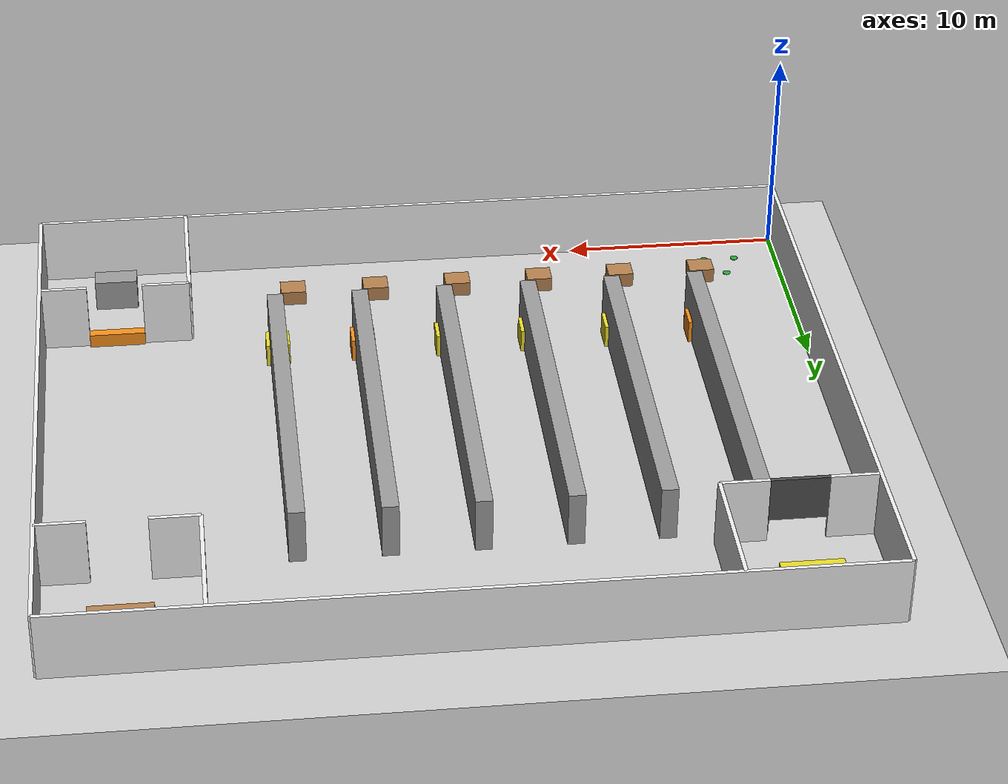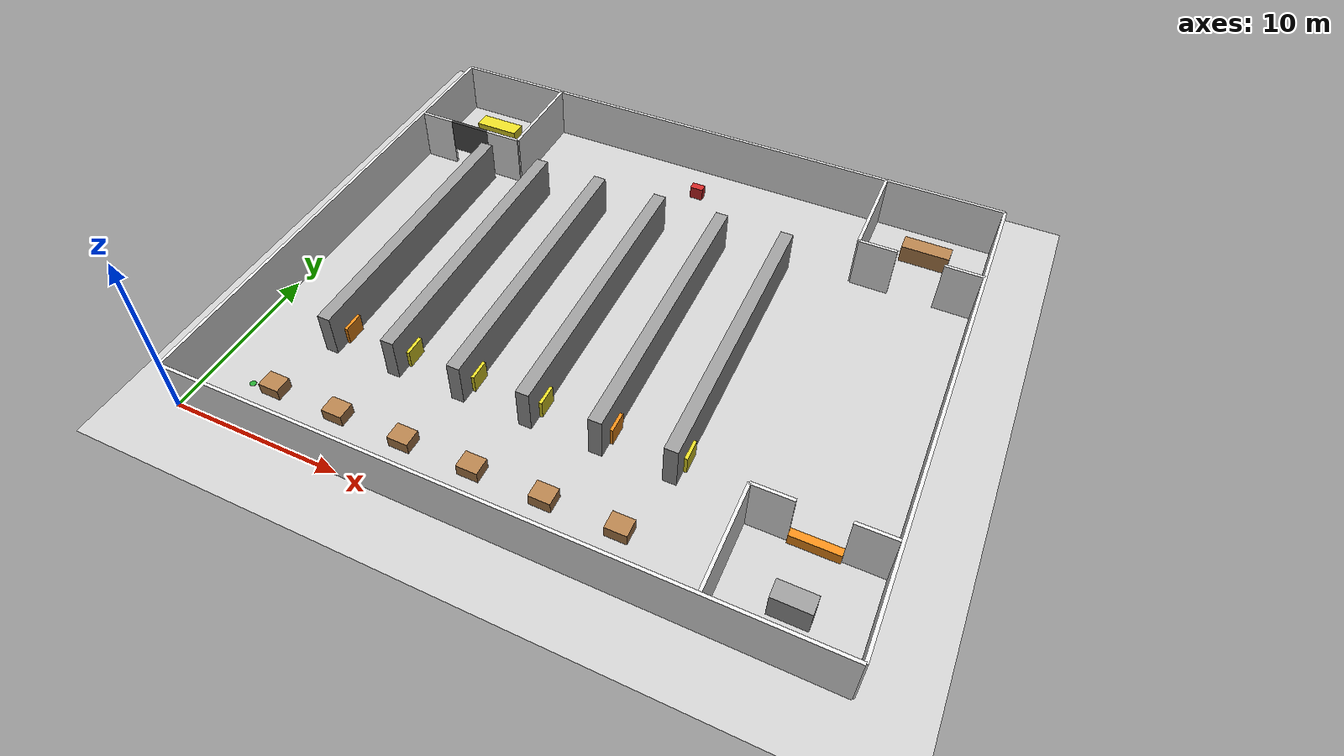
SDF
<?xml version='1.0' encoding='utf-8'?>
<sdf version="1.6">
  <world name="default">
    <physics name="default_physics" default="0" type="ode">
      <max_step_size>0.004</max_step_size>
      <real_time_update_rate>250</real_time_update_rate>
      <real_time_factor>1.0</real_time_factor>
    </physics>
    <scene>
      <ambient>0.65 0.65 0.65 1</ambient>
      <background>0.85 0.88 0.92 1</background>
    </scene>
    <include>
      <uri>model://sun</uri>
    </include>
    <include>
      <uri>model://ground_plane</uri>
    </include>
    <model name="outer_south_0">
      <static>true</static>
      <pose>18.000000 0.000000 1.600000 0.000000 0.000000 0.000000</pose>
      <link name="link">
        <collision name="collision">
          <geometry>
            <box>
              <size>36.000000 0.180000 3.200000</size>
            </box>
          </geometry>
        </collision>
        <visual name="visual">
          <geometry>
            <box>
              <size>36.000000 0.180000 3.200000</size>
            </box>
          </geometry>
          <material>
            <script>
              <uri>file://media/materials/scripts/gazebo.material</uri>
              <name>Gazebo/White</name>
            </script>
          </material>
        </visual>
      </link>
    </model>
    <model name="outer_north_0">
      <static>true</static>
      <pose>18.000000 30.000000 1.600000 0.000000 0.000000 0.000000</pose>
      <link name="link">
        <collision name="collision">
          <geometry>
            <box>
              <size>36.000000 0.180000 3.200000</size>
            </box>
          </geometry>
        </collision>
        <visual name="visual">
          <geometry>
            <box>
              <size>36.000000 0.180000 3.200000</size>
            </box>
          </geometry>
          <material>
            <script>
              <uri>file://media/materials/scripts/gazebo.material</uri>
              <name>Gazebo/White</name>
            </script>
          </material>
        </visual>
      </link>
    </model>
    <model name="outer_west_0">
      <static>true</static>
      <pose>0.000000 15.000000 1.600000 0.000000 0.000000 0.000000</pose>
      <link name="link">
        <collision name="collision">
          <geometry>
            <box>
              <size>0.180000 30.000000 3.200000</size>
            </box>
          </geometry>
        </collision>
        <visual name="visual">
          <geometry>
            <box>
              <size>0.180000 30.000000 3.200000</size>
            </box>
          </geometry>
          <material>
            <script>
              <uri>file://media/materials/scripts/gazebo.material</uri>
              <name>Gazebo/White</name>
            </script>
          </material>
        </visual>
      </link>
    </model>
    <model name="outer_east_0">
      <static>true</static>
      <pose>36.000000 15.000000 1.600000 0.000000 0.000000 0.000000</pose>
      <link name="link">
        <collision name="collision">
          <geometry>
            <box>
              <size>0.180000 30.000000 3.200000</size>
            </box>
          </geometry>
        </collision>
        <visual name="visual">
          <geometry>
            <box>
              <size>0.180000 30.000000 3.200000</size>
            </box>
          </geometry>
          <material>
            <script>
              <uri>file://media/materials/scripts/gazebo.material</uri>
              <name>Gazebo/White</name>
            </script>
          </material>
        </visual>
      </link>
    </model>
    <model name="rack_0">
      <static>true</static>
      <pose>5.000000 15.000000 1.300000 0.000000 0.000000 0.000000</pose>
      <link name="link">
        <collision name="collision">
          <geometry>
            <box>
              <size>0.750000 17.000000 2.600000</size>
            </box>
          </geometry>
        </collision>
        <visual name="visual">
          <geometry>
            <box>
              <size>0.750000 17.000000 2.600000</size>
            </box>
          </geometry>
          <material>
            <script>
              <uri>file://media/materials/scripts/gazebo.material</uri>
              <name>Gazebo/Grey</name>
            </script>
          </material>
        </visual>
      </link>
    </model>
    <model name="cargo_0">
      <static>true</static>
      <pose>5.000000 8.000000 0.550000 0.000000 0.000000 0.000000</pose>
      <link name="link">
        <collision name="collision">
          <geometry>
            <box>
              <size>1.100000 1.200000 1.100000</size>
            </box>
          </geometry>
        </collision>
        <visual name="visual">
          <geometry>
            <box>
              <size>1.100000 1.200000 1.100000</size>
            </box>
          </geometry>
          <material>
            <script>
              <uri>file://media/materials/scripts/gazebo.material</uri>
              <name>Gazebo/Orange</name>
            </script>
          </material>
        </visual>
      </link>
    </model>
    <model name="rack_1">
      <static>true</static>
      <pose>9.000000 15.000000 1.300000 0.000000 0.000000 0.000000</pose>
      <link name="link">
        <collision name="collision">
          <geometry>
            <box>
              <size>0.750000 17.000000 2.600000</size>
            </box>
          </geometry>
        </collision>
        <visual name="visual">
          <geometry>
            <box>
              <size>0.750000 17.000000 2.600000</size>
            </box>
          </geometry>
          <material>
            <script>
              <uri>file://media/materials/scripts/gazebo.material</uri>
              <name>Gazebo/Grey</name>
            </script>
          </material>
        </visual>
      </link>
    </model>
    <model name="cargo_1">
      <static>true</static>
      <pose>9.000000 8.000000 0.550000 0.000000 0.000000 0.000000</pose>
      <link name="link">
        <collision name="collision">
          <geometry>
            <box>
              <size>1.100000 1.200000 1.100000</size>
            </box>
          </geometry>
        </collision>
        <visual name="visual">
          <geometry>
            <box>
              <size>1.100000 1.200000 1.100000</size>
            </box>
          </geometry>
          <material>
            <script>
              <uri>file://media/materials/scripts/gazebo.material</uri>
              <name>Gazebo/Yellow</name>
            </script>
          </material>
        </visual>
      </link>
    </model>
    <model name="rack_2">
      <static>true</static>
      <pose>13.000000 15.000000 1.300000 0.000000 0.000000 0.000000</pose>
      <link name="link">
        <collision name="collision">
          <geometry>
            <box>
              <size>0.750000 17.000000 2.600000</size>
            </box>
          </geometry>
        </collision>
        <visual name="visual">
          <geometry>
            <box>
              <size>0.750000 17.000000 2.600000</size>
            </box>
          </geometry>
          <material>
            <script>
              <uri>file://media/materials/scripts/gazebo.material</uri>
              <name>Gazebo/Grey</name>
            </script>
          </material>
        </visual>
      </link>
    </model>
    <model name="cargo_2">
      <static>true</static>
      <pose>13.000000 8.000000 0.550000 0.000000 0.000000 0.000000</pose>
      <link name="link">
        <collision name="collision">
          <geometry>
            <box>
              <size>1.100000 1.200000 1.100000</size>
            </box>
          </geometry>
        </collision>
        <visual name="visual">
          <geometry>
            <box>
              <size>1.100000 1.200000 1.100000</size>
            </box>
          </geometry>
          <material>
            <script>
              <uri>file://media/materials/scripts/gazebo.material</uri>
              <name>Gazebo/Yellow</name>
            </script>
          </material>
        </visual>
      </link>
    </model>
    <model name="rack_3">
      <static>true</static>
      <pose>17.000000 15.000000 1.300000 0.000000 0.000000 0.000000</pose>
      <link name="link">
        <collision name="collision">
          <geometry>
            <box>
              <size>0.750000 17.000000 2.600000</size>
            </box>
          </geometry>
        </collision>
        <visual name="visual">
          <geometry>
            <box>
              <size>0.750000 17.000000 2.600000</size>
            </box>
          </geometry>
          <material>
            <script>
              <uri>file://media/materials/scripts/gazebo.material</uri>
              <name>Gazebo/Grey</name>
            </script>
          </material>
        </visual>
      </link>
    </model>
    <model name="cargo_3">
      <static>true</static>
      <pose>17.000000 8.000000 0.550000 0.000000 0.000000 0.000000</pose>
      <link name="link">
        <collision name="collision">
          <geometry>
            <box>
              <size>1.100000 1.200000 1.100000</size>
            </box>
          </geometry>
        </collision>
        <visual name="visual">
          <geometry>
            <box>
              <size>1.100000 1.200000 1.100000</size>
            </box>
          </geometry>
          <material>
            <script>
              <uri>file://media/materials/scripts/gazebo.material</uri>
              <name>Gazebo/Yellow</name>
            </script>
          </material>
        </visual>
      </link>
    </model>
    <model name="rack_4">
      <static>true</static>
      <pose>21.000000 15.000000 1.300000 0.000000 0.000000 0.000000</pose>
      <link name="link">
        <collision name="collision">
          <geometry>
            <box>
              <size>0.750000 17.000000 2.600000</size>
            </box>
          </geometry>
        </collision>
        <visual name="visual">
          <geometry>
            <box>
              <size>0.750000 17.000000 2.600000</size>
            </box>
          </geometry>
          <material>
            <script>
              <uri>file://media/materials/scripts/gazebo.material</uri>
              <name>Gazebo/Grey</name>
            </script>
          </material>
        </visual>
      </link>
    </model>
    <model name="cargo_4">
      <static>true</static>
      <pose>21.000000 8.000000 0.550000 0.000000 0.000000 0.000000</pose>
      <link name="link">
        <collision name="collision">
          <geometry>
            <box>
              <size>1.100000 1.200000 1.100000</size>
            </box>
          </geometry>
        </collision>
        <visual name="visual">
          <geometry>
            <box>
              <size>1.100000 1.200000 1.100000</size>
            </box>
          </geometry>
          <material>
            <script>
              <uri>file://media/materials/scripts/gazebo.material</uri>
              <name>Gazebo/Orange</name>
            </script>
          </material>
        </visual>
      </link>
    </model>
    <model name="rack_5">
      <static>true</static>
      <pose>25.000000 15.000000 1.300000 0.000000 0.000000 0.000000</pose>
      <link name="link">
        <collision name="collision">
          <geometry>
            <box>
              <size>0.750000 17.000000 2.600000</size>
            </box>
          </geometry>
        </collision>
        <visual name="visual">
          <geometry>
            <box>
              <size>0.750000 17.000000 2.600000</size>
            </box>
          </geometry>
          <material>
            <script>
              <uri>file://media/materials/scripts/gazebo.material</uri>
              <name>Gazebo/Grey</name>
            </script>
          </material>
        </visual>
      </link>
    </model>
    <model name="cargo_5">
      <static>true</static>
      <pose>25.000000 8.000000 0.550000 0.000000 0.000000 0.000000</pose>
      <link name="link">
        <collision name="collision">
          <geometry>
            <box>
              <size>1.100000 1.200000 1.100000</size>
            </box>
          </geometry>
        </collision>
        <visual name="visual">
          <geometry>
            <box>
              <size>1.100000 1.200000 1.100000</size>
            </box>
          </geometry>
          <material>
            <script>
              <uri>file://media/materials/scripts/gazebo.material</uri>
              <name>Gazebo/Yellow</name>
            </script>
          </material>
        </visual>
      </link>
    </model>
    <model name="dispatch_s_0">
      <static>true</static>
      <pose>30.100000 24.000000 1.600000 0.000000 0.000000 0.000000</pose>
      <link name="link">
        <collision name="collision">
          <geometry>
            <box>
              <size>2.200000 0.180000 3.200000</size>
            </box>
          </geometry>
        </collision>
        <visual name="visual">
          <geometry>
            <box>
              <size>2.200000 0.180000 3.200000</size>
            </box>
          </geometry>
          <material>
            <script>
              <uri>file://media/materials/scripts/gazebo.material</uri>
              <name>Gazebo/White</name>
            </script>
          </material>
        </visual>
      </link>
    </model>
    <model name="dispatch_s_1">
      <static>true</static>
      <pose>34.900000 24.000000 1.600000 0.000000 0.000000 0.000000</pose>
      <link name="link">
        <collision name="collision">
          <geometry>
            <box>
              <size>2.200000 0.180000 3.200000</size>
            </box>
          </geometry>
        </collision>
        <visual name="visual">
          <geometry>
            <box>
              <size>2.200000 0.180000 3.200000</size>
            </box>
          </geometry>
          <material>
            <script>
              <uri>file://media/materials/scripts/gazebo.material</uri>
              <name>Gazebo/White</name>
            </script>
          </material>
        </visual>
      </link>
    </model>
    <model name="dispatch_w_0">
      <static>true</static>
      <pose>29.000000 27.000000 1.600000 0.000000 0.000000 0.000000</pose>
      <link name="link">
        <collision name="collision">
          <geometry>
            <box>
              <size>0.180000 6.000000 3.200000</size>
            </box>
          </geometry>
        </collision>
        <visual name="visual">
          <geometry>
            <box>
              <size>0.180000 6.000000 3.200000</size>
            </box>
          </geometry>
          <material>
            <script>
              <uri>file://media/materials/scripts/gazebo.material</uri>
              <name>Gazebo/White</name>
            </script>
          </material>
        </visual>
      </link>
    </model>
    <model name="maintenance_s_0">
      <static>true</static>
      <pose>1.100000 24.000000 1.600000 0.000000 0.000000 0.000000</pose>
      <link name="link">
        <collision name="collision">
          <geometry>
            <box>
              <size>2.200000 0.180000 3.200000</size>
            </box>
          </geometry>
        </collision>
        <visual name="visual">
          <geometry>
            <box>
              <size>2.200000 0.180000 3.200000</size>
            </box>
          </geometry>
          <material>
            <script>
              <uri>file://media/materials/scripts/gazebo.material</uri>
              <name>Gazebo/White</name>
            </script>
          </material>
        </visual>
      </link>
    </model>
    <model name="maintenance_s_1">
      <static>true</static>
      <pose>5.900000 24.000000 1.600000 0.000000 0.000000 0.000000</pose>
      <link name="link">
        <collision name="collision">
          <geometry>
            <box>
              <size>2.200000 0.180000 3.200000</size>
            </box>
          </geometry>
        </collision>
        <visual name="visual">
          <geometry>
            <box>
              <size>2.200000 0.180000 3.200000</size>
            </box>
          </geometry>
          <material>
            <script>
              <uri>file://media/materials/scripts/gazebo.material</uri>
              <name>Gazebo/White</name>
            </script>
          </material>
        </visual>
      </link>
    </model>
    <model name="maintenance_e_0">
      <static>true</static>
      <pose>7.000000 27.000000 1.600000 0.000000 0.000000 0.000000</pose>
      <link name="link">
        <collision name="collision">
          <geometry>
            <box>
              <size>0.180000 6.000000 3.200000</size>
            </box>
          </geometry>
        </collision>
        <visual name="visual">
          <geometry>
            <box>
              <size>0.180000 6.000000 3.200000</size>
            </box>
          </geometry>
          <material>
            <script>
              <uri>file://media/materials/scripts/gazebo.material</uri>
              <name>Gazebo/White</name>
            </script>
          </material>
        </visual>
      </link>
    </model>
    <model name="maintenance_half_shutter">
      <static>true</static>
      <pose>3.500000 24.000000 2.150000 0.000000 0.000000 0.000000</pose>
      <link name="link">
        <collision name="collision">
          <geometry>
            <box>
              <size>2.600000 0.180000 2.100000</size>
            </box>
          </geometry>
        </collision>
        <visual name="visual">
          <geometry>
            <box>
              <size>2.600000 0.180000 2.100000</size>
            </box>
          </geometry>
          <material>
            <script>
              <uri>file://media/materials/scripts/gazebo.material</uri>
              <name>Gazebo/DarkGrey</name>
            </script>
          </material>
        </visual>
      </link>
    </model>
    <model name="hazard_n_0">
      <static>true</static>
      <pose>30.100000 6.000000 1.600000 0.000000 0.000000 0.000000</pose>
      <link name="link">
        <collision name="collision">
          <geometry>
            <box>
              <size>2.200000 0.180000 3.200000</size>
            </box>
          </geometry>
        </collision>
        <visual name="visual">
          <geometry>
            <box>
              <size>2.200000 0.180000 3.200000</size>
            </box>
          </geometry>
          <material>
            <script>
              <uri>file://media/materials/scripts/gazebo.material</uri>
              <name>Gazebo/White</name>
            </script>
          </material>
        </visual>
      </link>
    </model>
    <model name="hazard_n_1">
      <static>true</static>
      <pose>34.900000 6.000000 1.600000 0.000000 0.000000 0.000000</pose>
      <link name="link">
        <collision name="collision">
          <geometry>
            <box>
              <size>2.200000 0.180000 3.200000</size>
            </box>
          </geometry>
        </collision>
        <visual name="visual">
          <geometry>
            <box>
              <size>2.200000 0.180000 3.200000</size>
            </box>
          </geometry>
          <material>
            <script>
              <uri>file://media/materials/scripts/gazebo.material</uri>
              <name>Gazebo/White</name>
            </script>
          </material>
        </visual>
      </link>
    </model>
    <model name="hazard_w_0">
      <static>true</static>
      <pose>29.000000 3.000000 1.600000 0.000000 0.000000 0.000000</pose>
      <link name="link">
        <collision name="collision">
          <geometry>
            <box>
              <size>0.180000 6.000000 3.200000</size>
            </box>
          </geometry>
        </collision>
        <visual name="visual">
          <geometry>
            <box>
              <size>0.180000 6.000000 3.200000</size>
            </box>
          </geometry>
          <material>
            <script>
              <uri>file://media/materials/scripts/gazebo.material</uri>
              <name>Gazebo/White</name>
            </script>
          </material>
        </visual>
      </link>
    </model>
    <model name="hazard_pallet_spill">
      <static>true</static>
      <pose>32.500000 6.000000 0.325000 0.000000 0.000000 0.000000</pose>
      <link name="link">
        <collision name="collision">
          <geometry>
            <box>
              <size>2.600000 0.450000 0.650000</size>
            </box>
          </geometry>
        </collision>
        <visual name="visual">
          <geometry>
            <box>
              <size>2.600000 0.450000 0.650000</size>
            </box>
          </geometry>
          <material>
            <script>
              <uri>file://media/materials/scripts/gazebo.material</uri>
              <name>Gazebo/Orange</name>
            </script>
          </material>
        </visual>
      </link>
    </model>
    <model name="staging_pallet_0">
      <static>true</static>
      <pose>4.000000 3.000000 0.350000 0.000000 0.000000 0.000000</pose>
      <link name="link">
        <collision name="collision">
          <geometry>
            <box>
              <size>1.200000 1.000000 0.700000</size>
            </box>
          </geometry>
        </collision>
        <visual name="visual">
          <geometry>
            <box>
              <size>1.200000 1.000000 0.700000</size>
            </box>
          </geometry>
          <material>
            <script>
              <uri>file://media/materials/scripts/gazebo.material</uri>
              <name>Gazebo/Wood</name>
            </script>
          </material>
        </visual>
      </link>
    </model>
    <model name="staging_pallet_1">
      <static>true</static>
      <pose>8.000000 3.000000 0.350000 0.000000 0.000000 0.000000</pose>
      <link name="link">
        <collision name="collision">
          <geometry>
            <box>
              <size>1.200000 1.000000 0.700000</size>
            </box>
          </geometry>
        </collision>
        <visual name="visual">
          <geometry>
            <box>
              <size>1.200000 1.000000 0.700000</size>
            </box>
          </geometry>
          <material>
            <script>
              <uri>file://media/materials/scripts/gazebo.material</uri>
              <name>Gazebo/Wood</name>
            </script>
          </material>
        </visual>
      </link>
    </model>
    <model name="staging_pallet_2">
      <static>true</static>
      <pose>12.000000 3.000000 0.350000 0.000000 0.000000 0.000000</pose>
      <link name="link">
        <collision name="collision">
          <geometry>
            <box>
              <size>1.200000 1.000000 0.700000</size>
            </box>
          </geometry>
        </collision>
        <visual name="visual">
          <geometry>
            <box>
              <size>1.200000 1.000000 0.700000</size>
            </box>
          </geometry>
          <material>
            <script>
              <uri>file://media/materials/scripts/gazebo.material</uri>
              <name>Gazebo/Wood</name>
            </script>
          </material>
        </visual>
      </link>
    </model>
    <model name="staging_pallet_3">
      <static>true</static>
      <pose>16.000000 3.000000 0.350000 0.000000 0.000000 0.000000</pose>
      <link name="link">
        <collision name="collision">
          <geometry>
            <box>
              <size>1.200000 1.000000 0.700000</size>
            </box>
          </geometry>
        </collision>
        <visual name="visual">
          <geometry>
            <box>
              <size>1.200000 1.000000 0.700000</size>
            </box>
          </geometry>
          <material>
            <script>
              <uri>file://media/materials/scripts/gazebo.material</uri>
              <name>Gazebo/Wood</name>
            </script>
          </material>
        </visual>
      </link>
    </model>
    <model name="staging_pallet_4">
      <static>true</static>
      <pose>20.000000 3.000000 0.350000 0.000000 0.000000 0.000000</pose>
      <link name="link">
        <collision name="collision">
          <geometry>
            <box>
              <size>1.200000 1.000000 0.700000</size>
            </box>
          </geometry>
        </collision>
        <visual name="visual">
          <geometry>
            <box>
              <size>1.200000 1.000000 0.700000</size>
            </box>
          </geometry>
          <material>
            <script>
              <uri>file://media/materials/scripts/gazebo.material</uri>
              <name>Gazebo/Wood</name>
            </script>
          </material>
        </visual>
      </link>
    </model>
    <model name="staging_pallet_5">
      <static>true</static>
      <pose>24.000000 3.000000 0.350000 0.000000 0.000000 0.000000</pose>
      <link name="link">
        <collision name="collision">
          <geometry>
            <box>
              <size>1.200000 1.000000 0.700000</size>
            </box>
          </geometry>
        </collision>
        <visual name="visual">
          <geometry>
            <box>
              <size>1.200000 1.000000 0.700000</size>
            </box>
          </geometry>
          <material>
            <script>
              <uri>file://media/materials/scripts/gazebo.material</uri>
              <name>Gazebo/Wood</name>
            </script>
          </material>
        </visual>
      </link>
    </model>
    <model name="dispatch_desk">
      <static>true</static>
      <pose>32.500000 27.500000 0.550000 0.000000 0.000000 0.000000</pose>
      <link name="link">
        <collision name="collision">
          <geometry>
            <box>
              <size>2.800000 1.000000 1.100000</size>
            </box>
          </geometry>
        </collision>
        <visual name="visual">
          <geometry>
            <box>
              <size>2.800000 1.000000 1.100000</size>
            </box>
          </geometry>
          <material>
            <script>
              <uri>file://media/materials/scripts/gazebo.material</uri>
              <name>Gazebo/Wood</name>
            </script>
          </material>
        </visual>
      </link>
    </model>
    <model name="maintenance_bench">
      <static>true</static>
      <pose>3.500000 27.500000 0.550000 0.000000 0.000000 0.000000</pose>
      <link name="link">
        <collision name="collision">
          <geometry>
            <box>
              <size>2.800000 1.000000 1.100000</size>
            </box>
          </geometry>
        </collision>
        <visual name="visual">
          <geometry>
            <box>
              <size>2.800000 1.000000 1.100000</size>
            </box>
          </geometry>
          <material>
            <script>
              <uri>file://media/materials/scripts/gazebo.material</uri>
              <name>Gazebo/Yellow</name>
            </script>
          </material>
        </visual>
      </link>
    </model>
    <model name="hazard_cage">
      <static>true</static>
      <pose>32.500000 2.500000 0.750000 0.000000 0.000000 0.000000</pose>
      <link name="link">
        <collision name="collision">
          <geometry>
            <box>
              <size>2.000000 1.000000 1.500000</size>
            </box>
          </geometry>
        </collision>
        <visual name="visual">
          <geometry>
            <box>
              <size>2.000000 1.000000 1.500000</size>
            </box>
          </geometry>
          <material>
            <script>
              <uri>file://media/materials/scripts/gazebo.material</uri>
              <name>Gazebo/Grey</name>
            </script>
          </material>
        </visual>
      </link>
    </model>
    <model name="robot_start_1">
      <static>true</static>
      <pose>2.000000 1.500000 0.015000 0.000000 0.000000 0.000000</pose>
      <link name="link">
        <visual name="visual">
          <geometry>
            <cylinder>
              <radius>0.18</radius>
              <length>0.03</length>
            </cylinder>
          </geometry>
          <material>
            <script>
              <uri>file://media/materials/scripts/gazebo.material</uri>
              <name>Gazebo/Green</name>
            </script>
          </material>
        </visual>
      </link>
    </model>
    <model name="robot_start_2">
      <static>true</static>
      <pose>3.500000 1.500000 0.015000 0.000000 0.000000 0.000000</pose>
      <link name="link">
        <visual name="visual">
          <geometry>
            <cylinder>
              <radius>0.18</radius>
              <length>0.03</length>
            </cylinder>
          </geometry>
          <material>
            <script>
              <uri>file://media/materials/scripts/gazebo.material</uri>
              <name>Gazebo/Green</name>
            </script>
          </material>
        </visual>
      </link>
    </model>
    <model name="robot_start_3">
      <static>true</static>
      <pose>2.600000 2.800000 0.015000 0.000000 0.000000 0.000000</pose>
      <link name="link">
        <visual name="visual">
          <geometry>
            <cylinder>
              <radius>0.18</radius>
              <length>0.03</length>
            </cylinder>
          </geometry>
          <material>
            <script>
              <uri>file://media/materials/scripts/gazebo.material</uri>
              <name>Gazebo/Green</name>
            </script>
          </material>
        </visual>
      </link>
    </model>
    <gui fullscreen="0">
      <camera name="user_camera">
        <pose>18.000 13.000 45.0 0 0.95 1.5708</pose>
      </camera>
    </gui>
    <model name="red_target_case">
      <static>true</static>
      <pose>18.000000 27.400000 0.400000 0.000000 0.000000 3.141593</pose>
      <link name="link">
        <collision name="collision">
          <geometry>
            <box>
              <size>0.800000 0.500000 0.800000</size>
            </box>
          </geometry>
        </collision>
        <visual name="visual">
          <geometry>
            <box>
              <size>0.800000 0.500000 0.800000</size>
            </box>
          </geometry>
          <material>
            <script>
              <uri>file://media/materials/scripts/gazebo.material</uri>
              <name>Gazebo/Red</name>
            </script>
          </material>
        </visual>
      </link>
    </model>
    <model name="red_target_cross_vertical">
      <static>true</static>
      <pose>18.000000 27.656000 0.430000 0.000000 0.000000 3.141593</pose>
      <link name="link">
        <visual name="visual">
          <geometry>
            <box>
              <size>0.100000 0.025000 0.420000</size>
            </box>
          </geometry>
          <material>
            <script>
              <uri>file://media/materials/scripts/gazebo.material</uri>
              <name>Gazebo/White</name>
            </script>
          </material>
        </visual>
      </link>
    </model>
    <model name="red_target_cross_horizontal">
      <static>true</static>
      <pose>18.000000 27.656000 0.430000 0.000000 0.000000 3.141593</pose>
      <link name="link">
        <visual name="visual">
          <geometry>
            <box>
              <size>0.340000 0.025000 0.100000</size>
            </box>
          </geometry>
          <material>
            <script>
              <uri>file://media/materials/scripts/gazebo.material</uri>
              <name>Gazebo/White</name>
            </script>
          </material>
        </visual>
      </link>
    </model>
  </world>
</sdf>
